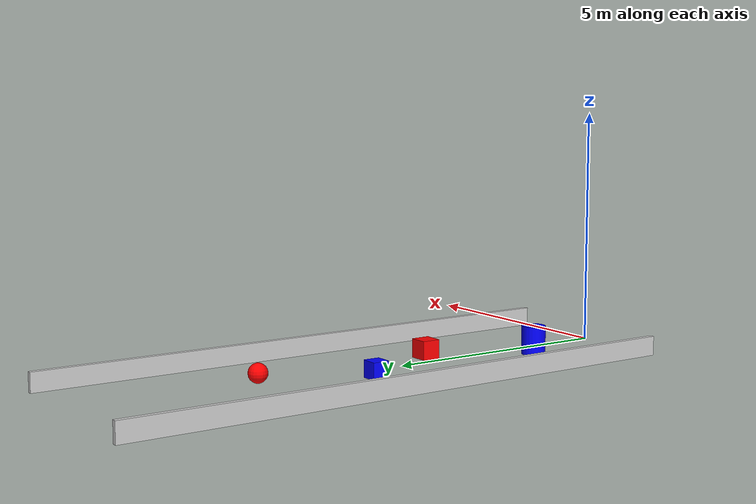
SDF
<?xml version='1.0'?>
<sdf version='1.7'>
  <model name='maze'>
    <pose>0 0 0 0 0 0</pose>
    <static>true</static>

    <!-- ───── corridor walls (0.4 m tall, 0.1 m thick, 12 m long) ───── -->
    <link name='left_wall'>
      <pose>-2 6 0.2 0 0 0</pose>
      <collision name='c'>
        <geometry><box><size>0.1 12 0.4</size></box></geometry>
      </collision>
      <visual name='v'>
        <geometry><box><size>0.1 12 0.4</size></box></geometry>
        <material><ambient>0.8 0.8 0.8 1</ambient></material>
      </visual>
    </link>

    <link name='right_wall'>
      <pose> 2 6 0.2 0 0 0</pose>
      <collision name='c'>
        <geometry><box><size>0.1 12 0.4</size></box></geometry>
      </collision>
      <visual name='v'>
        <geometry><box><size>0.1 12 0.4</size></box></geometry>
        <material><ambient>0.8 0.8 0.8 1</ambient></material>
      </visual>
    </link>

    <!-- ───── BLUE #1 – cylinder Ø0.25 × 0.6 m (left) ───── -->
    <link name='blue_cylinder'>
      <pose>-0.55 2 0.3 0 0 0</pose>
      <collision name='col'>
        <geometry><cylinder><radius>0.25</radius><length>0.6</length></cylinder></geometry>
      </collision>
      <visual name='vis'>
        <geometry><cylinder><radius>0.25</radius><length>0.6</length></cylinder></geometry>
        <material><ambient>0 0 1 1</ambient><diffuse>0 0 1 1</diffuse></material>
      </visual>
    </link>

    <!-- ───── RED #1 – cube 0.30 m (right) ───── -->
    <link name='red_cube'>
      <pose>0.55 4 0.15 0 0 0</pose>
      <collision name='col'>
        <geometry><box><size>0.4 0.4 0.4</size></box></geometry>
      </collision>
      <visual name='vis'>
        <geometry><box><size>0.4 0.4 0.4</size></box></geometry>
        <material><ambient>1 0 0 1</ambient><diffuse>1 0 0 1</diffuse></material>
      </visual>
    </link>

    <!-- ───── BLUE #2 – “pyramid” (simple box 0.35 m) (left) ───── -->
    <link name='blue_pyramid'>
      <pose>-0.55 6 0.175 0 0 0</pose>
      <collision name='col'>
        <geometry><box><size>0.35 0.35 0.35</size></box></geometry>
      </collision>
      <visual name='vis'>
        <geometry><box><size>0.35 0.35 0.35</size></box></geometry>
        <material><ambient>0 0 1 1</ambient><diffuse>0 0 1 1</diffuse></material>
      </visual>
    </link>

    <!-- ───── RED #2 – sphere Ø0.28 m (right) ───── -->
    <link name='red_sphere'>
      <pose>0.55 8 0.14 0 0 0</pose>
      <collision name='col'>
        <geometry><sphere><radius>0.2</radius></sphere></geometry>
      </collision>
      <visual name='vis'>
        <geometry><sphere><radius>0.2</radius></sphere></geometry>
        <material><ambient>1 0 0 1</ambient><diffuse>1 0 0 1</diffuse></material>
      </visual>
    </link>

  </model>
</sdf>
